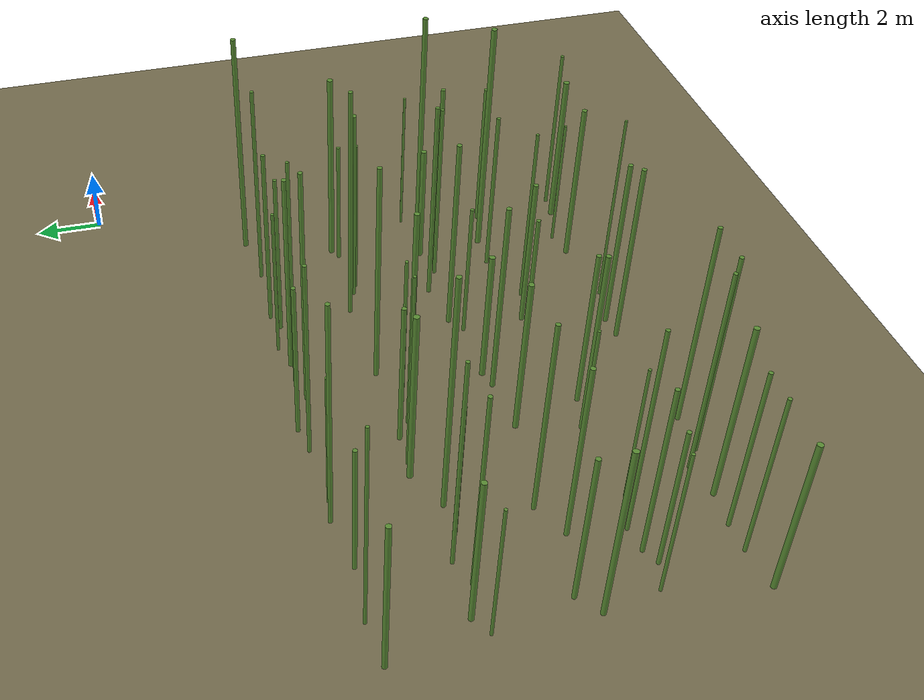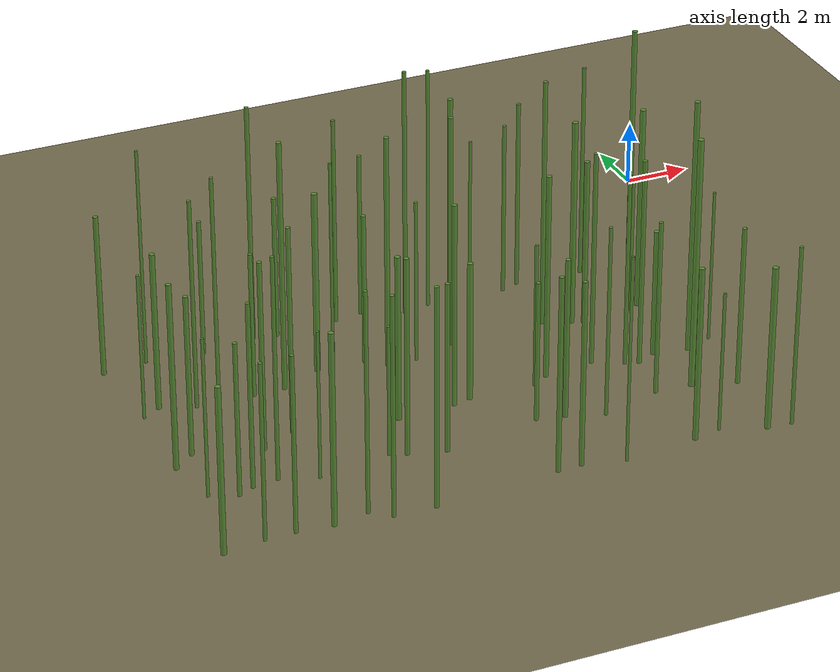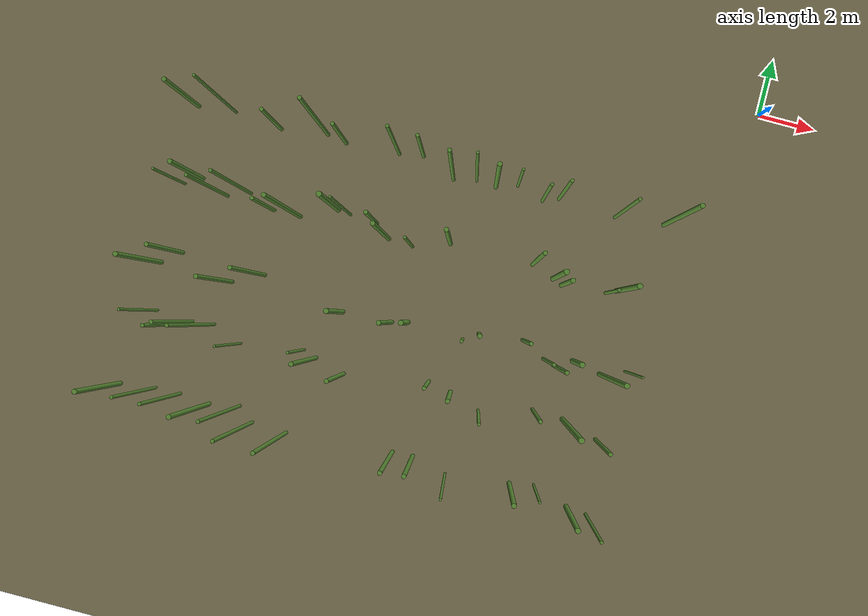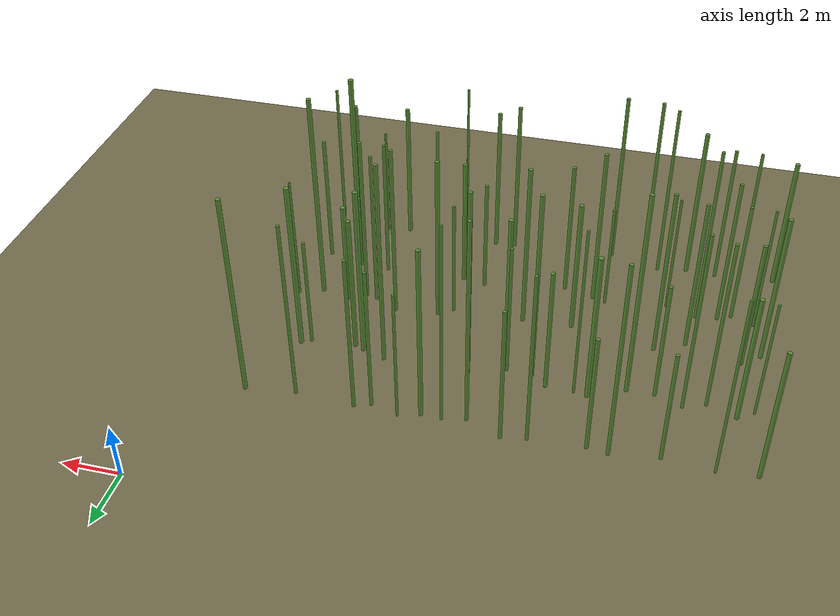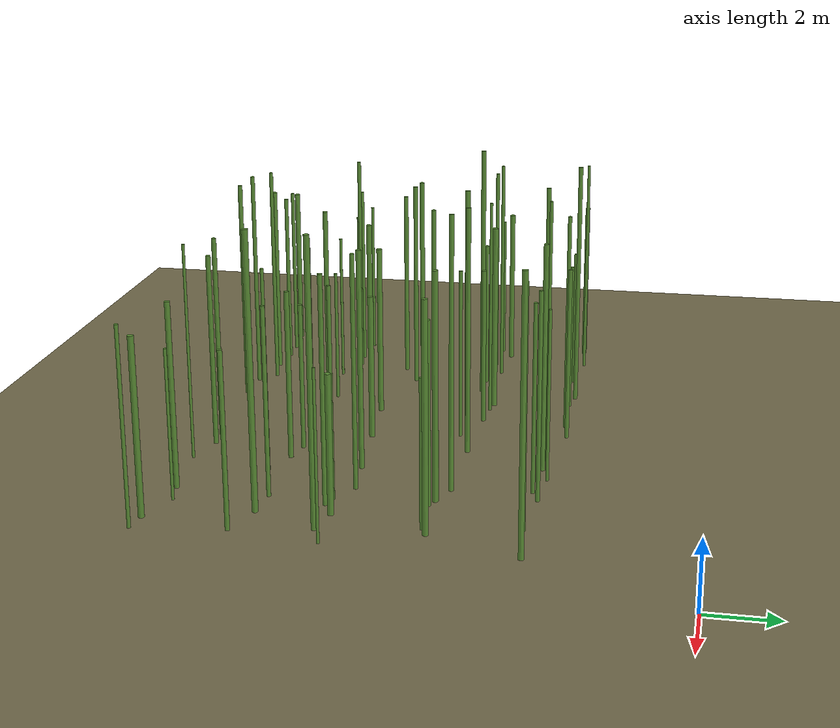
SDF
<sdf version="1.9">
 <world name="bamboo_field">
  <model name="ground_plane">
   <static>true</static>
   <link name="link">
    <collision name="collision">
     <geometry><plane><normal>0 0 1</normal><size>80.0 80.0</size></plane></geometry>
    </collision>
    <visual name="visual">
     <geometry><plane><normal>0 0 1</normal><size>80.0 80.0</size></plane></geometry>
     <material><diffuse>0.45 0.42 0.30 1</diffuse></material>
    </visual>
   </link>
  </model>
  <model name="bamboo_622">
   <static>true</static>
   <pose>-19.19589700022642 -14.782500453258823 2.566533336017912 0 0 0</pose>
   <link name="link">
    <collision name="collision">
     <geometry>
      <cylinder><radius>0.08295266236507057</radius><length>5.133066672035824</length></cylinder>
     </geometry>
    </collision>
    <visual name="visual">
     <geometry>
      <cylinder><radius>0.08295266236507057</radius><length>5.133066672035824</length></cylinder>
     </geometry>
     <material><diffuse>0.35 0.55 0.20 1</diffuse><specular>0.1 0.1 0.1 1</specular></material>
    </visual>
   </link>
  </model>
  <model name="bamboo_624">
   <static>true</static>
   <pose>-17.963861559259982 -14.612449992195321 2.7245395795491816 0 0 0</pose>
   <link name="link">
    <collision name="collision">
     <geometry>
      <cylinder><radius>0.05579508573146353</radius><length>5.449079159098363</length></cylinder>
     </geometry>
    </collision>
    <visual name="visual">
     <geometry>
      <cylinder><radius>0.05579508573146353</radius><length>5.449079159098363</length></cylinder>
     </geometry>
     <material><diffuse>0.35 0.55 0.20 1</diffuse><specular>0.1 0.1 0.1 1</specular></material>
    </visual>
   </link>
  </model>
  <model name="bamboo_625">
   <static>true</static>
   <pose>-17.077861095144467 -14.59212915299546 2.7312881888729432 0 0 0</pose>
   <link name="link">
    <collision name="collision">
     <geometry>
      <cylinder><radius>0.06117807737166815</radius><length>5.4625763777458864</length></cylinder>
     </geometry>
    </collision>
    <visual name="visual">
     <geometry>
      <cylinder><radius>0.06117807737166815</radius><length>5.4625763777458864</length></cylinder>
     </geometry>
     <material><diffuse>0.35 0.55 0.20 1</diffuse><specular>0.1 0.1 0.1 1</specular></material>
    </visual>
   </link>
  </model>
  <model name="bamboo_626">
   <static>true</static>
   <pose>-16.009615636701124 -14.680115197131043 2.964935514013761 0 0 0</pose>
   <link name="link">
    <collision name="collision">
     <geometry>
      <cylinder><radius>0.07918942084817687</radius><length>5.929871028027522</length></cylinder>
     </geometry>
    </collision>
    <visual name="visual">
     <geometry>
      <cylinder><radius>0.07918942084817687</radius><length>5.929871028027522</length></cylinder>
     </geometry>
     <material><diffuse>0.35 0.55 0.20 1</diffuse><specular>0.1 0.1 0.1 1</specular></material>
    </visual>
   </link>
  </model>
  <model name="bamboo_627">
   <static>true</static>
   <pose>-14.95220595531622 -14.470053900563355 3.4109892159421706 0 0 0</pose>
   <link name="link">
    <collision name="collision">
     <geometry>
      <cylinder><radius>0.05721781521074268</radius><length>6.821978431884341</length></cylinder>
     </geometry>
    </collision>
    <visual name="visual">
     <geometry>
      <cylinder><radius>0.05721781521074268</radius><length>6.821978431884341</length></cylinder>
     </geometry>
     <material><diffuse>0.35 0.55 0.20 1</diffuse><specular>0.1 0.1 0.1 1</specular></material>
    </visual>
   </link>
  </model>
  <model name="bamboo_628">
   <static>true</static>
   <pose>-14.390283934693272 -14.918432447463218 3.3986228845901065 0 0 0</pose>
   <link name="link">
    <collision name="collision">
     <geometry>
      <cylinder><radius>0.06232974387076096</radius><length>6.797245769180213</length></cylinder>
     </geometry>
    </collision>
    <visual name="visual">
     <geometry>
      <cylinder><radius>0.06232974387076096</radius><length>6.797245769180213</length></cylinder>
     </geometry>
     <material><diffuse>0.35 0.55 0.20 1</diffuse><specular>0.1 0.1 0.1 1</specular></material>
    </visual>
   </link>
  </model>
  <model name="bamboo_629">
   <static>true</static>
   <pose>-13.148563201045668 -14.956036540146622 3.3941148174489206 0 0 0</pose>
   <link name="link">
    <collision name="collision">
     <geometry>
      <cylinder><radius>0.0675288107298409</radius><length>6.788229634897841</length></cylinder>
     </geometry>
    </collision>
    <visual name="visual">
     <geometry>
      <cylinder><radius>0.0675288107298409</radius><length>6.788229634897841</length></cylinder>
     </geometry>
     <material><diffuse>0.35 0.55 0.20 1</diffuse><specular>0.1 0.1 0.1 1</specular></material>
    </visual>
   </link>
  </model>
  <model name="bamboo_631">
   <static>true</static>
   <pose>-9.398853418787553 -14.650322351870006 3.042011086441118 0 0 0</pose>
   <link name="link">
    <collision name="collision">
     <geometry>
      <cylinder><radius>0.07069827953583568</radius><length>6.084022172882236</length></cylinder>
     </geometry>
    </collision>
    <visual name="visual">
     <geometry>
      <cylinder><radius>0.07069827953583568</radius><length>6.084022172882236</length></cylinder>
     </geometry>
     <material><diffuse>0.35 0.55 0.20 1</diffuse><specular>0.1 0.1 0.1 1</specular></material>
    </visual>
   </link>
  </model>
  <model name="bamboo_632">
   <static>true</static>
   <pose>-8.677496087881385 -14.608734190645084 2.8779440970824717 0 0 0</pose>
   <link name="link">
    <collision name="collision">
     <geometry>
      <cylinder><radius>0.07201456572650686</radius><length>5.755888194164943</length></cylinder>
     </geometry>
    </collision>
    <visual name="visual">
     <geometry>
      <cylinder><radius>0.07201456572650686</radius><length>5.755888194164943</length></cylinder>
     </geometry>
     <material><diffuse>0.35 0.55 0.20 1</diffuse><specular>0.1 0.1 0.1 1</specular></material>
    </visual>
   </link>
  </model>
  <model name="bamboo_633">
   <static>true</static>
   <pose>-7.436057652112463 -14.906383465567231 3.199029825784979 0 0 0</pose>
   <link name="link">
    <collision name="collision">
     <geometry>
      <cylinder><radius>0.041680467569812925</radius><length>6.398059651569958</length></cylinder>
     </geometry>
    </collision>
    <visual name="visual">
     <geometry>
      <cylinder><radius>0.041680467569812925</radius><length>6.398059651569958</length></cylinder>
     </geometry>
     <material><diffuse>0.35 0.55 0.20 1</diffuse><specular>0.1 0.1 0.1 1</specular></material>
    </visual>
   </link>
  </model>
  <model name="bamboo_634">
   <static>true</static>
   <pose>-5.194053301083249 -14.658297030893085 2.7062553267130562 0 0 0</pose>
   <link name="link">
    <collision name="collision">
     <geometry>
      <cylinder><radius>0.07898364394882086</radius><length>5.4125106534261125</length></cylinder>
     </geometry>
    </collision>
    <visual name="visual">
     <geometry>
      <cylinder><radius>0.07898364394882086</radius><length>5.4125106534261125</length></cylinder>
     </geometry>
     <material><diffuse>0.35 0.55 0.20 1</diffuse><specular>0.1 0.1 0.1 1</specular></material>
    </visual>
   </link>
  </model>
  <model name="bamboo_635">
   <static>true</static>
   <pose>-4.3644107516979105 -14.487717784825364 2.180331715190301 0 0 0</pose>
   <link name="link">
    <collision name="collision">
     <geometry>
      <cylinder><radius>0.04343085859685295</radius><length>4.360663430380602</length></cylinder>
     </geometry>
    </collision>
    <visual name="visual">
     <geometry>
      <cylinder><radius>0.04343085859685295</radius><length>4.360663430380602</length></cylinder>
     </geometry>
     <material><diffuse>0.35 0.55 0.20 1</diffuse><specular>0.1 0.1 0.1 1</specular></material>
    </visual>
   </link>
  </model>
  <model name="bamboo_636">
   <static>true</static>
   <pose>-3.073098427449538 -14.932385511379701 2.5530156973942444 0 0 0</pose>
   <link name="link">
    <collision name="collision">
     <geometry>
      <cylinder><radius>0.08816438325327444</radius><length>5.106031394788489</length></cylinder>
     </geometry>
    </collision>
    <visual name="visual">
     <geometry>
      <cylinder><radius>0.08816438325327444</radius><length>5.106031394788489</length></cylinder>
     </geometry>
     <material><diffuse>0.35 0.55 0.20 1</diffuse><specular>0.1 0.1 0.1 1</specular></material>
    </visual>
   </link>
  </model>
  <model name="bamboo_637">
   <static>true</static>
   <pose>-2.3511418072444625 -15.01788296717118 2.8142692522144035 0 0 0</pose>
   <link name="link">
    <collision name="collision">
     <geometry>
      <cylinder><radius>0.05305537528359695</radius><length>5.628538504428807</length></cylinder>
     </geometry>
    </collision>
    <visual name="visual">
     <geometry>
      <cylinder><radius>0.05305537528359695</radius><length>5.628538504428807</length></cylinder>
     </geometry>
     <material><diffuse>0.35 0.55 0.20 1</diffuse><specular>0.1 0.1 0.1 1</specular></material>
    </visual>
   </link>
  </model>
  <model name="bamboo_690">
   <static>true</static>
   <pose>-18.60156482868109 -11.990997208842836 2.4653492617121273 0 0 0</pose>
   <link name="link">
    <collision name="collision">
     <geometry>
      <cylinder><radius>0.04629137288326132</radius><length>4.930698523424255</length></cylinder>
     </geometry>
    </collision>
    <visual name="visual">
     <geometry>
      <cylinder><radius>0.04629137288326132</radius><length>4.930698523424255</length></cylinder>
     </geometry>
     <material><diffuse>0.35 0.55 0.20 1</diffuse><specular>0.1 0.1 0.1 1</specular></material>
    </visual>
   </link>
  </model>
  <model name="bamboo_691">
   <static>true</static>
   <pose>-17.80358383087639 -12.292273238818344 2.385930598100317 0 0 0</pose>
   <link name="link">
    <collision name="collision">
     <geometry>
      <cylinder><radius>0.06193594490482987</radius><length>4.771861196200634</length></cylinder>
     </geometry>
    </collision>
    <visual name="visual">
     <geometry>
      <cylinder><radius>0.06193594490482987</radius><length>4.771861196200634</length></cylinder>
     </geometry>
     <material><diffuse>0.35 0.55 0.20 1</diffuse><specular>0.1 0.1 0.1 1</specular></material>
    </visual>
   </link>
  </model>
  <model name="bamboo_692">
   <static>true</static>
   <pose>-17.325865730062212 -12.055064044396689 2.8750000083301184 0 0 0</pose>
   <link name="link">
    <collision name="collision">
     <geometry>
      <cylinder><radius>0.06426510665812565</radius><length>5.750000016660237</length></cylinder>
     </geometry>
    </collision>
    <visual name="visual">
     <geometry>
      <cylinder><radius>0.06426510665812565</radius><length>5.750000016660237</length></cylinder>
     </geometry>
     <material><diffuse>0.35 0.55 0.20 1</diffuse><specular>0.1 0.1 0.1 1</specular></material>
    </visual>
   </link>
  </model>
  <model name="bamboo_693">
   <static>true</static>
   <pose>-16.563528489082167 -11.961045771519863 3.4648048202454254 0 0 0</pose>
   <link name="link">
    <collision name="collision">
     <geometry>
      <cylinder><radius>0.05738323395091327</radius><length>6.929609640490851</length></cylinder>
     </geometry>
    </collision>
    <visual name="visual">
     <geometry>
      <cylinder><radius>0.05738323395091327</radius><length>6.929609640490851</length></cylinder>
     </geometry>
     <material><diffuse>0.35 0.55 0.20 1</diffuse><specular>0.1 0.1 0.1 1</specular></material>
    </visual>
   </link>
  </model>
  <model name="bamboo_694">
   <static>true</static>
   <pose>-15.483495149444247 -12.358645998666844 2.310050956150654 0 0 0</pose>
   <link name="link">
    <collision name="collision">
     <geometry>
      <cylinder><radius>0.043443829168057974</radius><length>4.620101912301308</length></cylinder>
     </geometry>
    </collision>
    <visual name="visual">
     <geometry>
      <cylinder><radius>0.043443829168057974</radius><length>4.620101912301308</length></cylinder>
     </geometry>
     <material><diffuse>0.35 0.55 0.20 1</diffuse><specular>0.1 0.1 0.1 1</specular></material>
    </visual>
   </link>
  </model>
  <model name="bamboo_695">
   <static>true</static>
   <pose>-13.288630002678582 -11.99977888943509 2.03743971317611 0 0 0</pose>
   <link name="link">
    <collision name="collision">
     <geometry>
      <cylinder><radius>0.049276714504857495</radius><length>4.07487942635222</length></cylinder>
     </geometry>
    </collision>
    <visual name="visual">
     <geometry>
      <cylinder><radius>0.049276714504857495</radius><length>4.07487942635222</length></cylinder>
     </geometry>
     <material><diffuse>0.35 0.55 0.20 1</diffuse><specular>0.1 0.1 0.1 1</specular></material>
    </visual>
   </link>
  </model>
  <model name="bamboo_696">
   <static>true</static>
   <pose>-12.821652293099609 -12.17614164872633 3.0779130431868094 0 0 0</pose>
   <link name="link">
    <collision name="collision">
     <geometry><cylinder><radius>0.072914470868991</radius><length>6.155826086373619</length></cylinder></geometry>
    </collision>
    <visual name="visual">
     <geometry><cylinder><radius>0.072914470868991</radius><length>6.155826086373619</length></cylinder></geometry>
     <material><diffuse>0.35 0.55 0.20 1</diffuse><specular>0.1 0.1 0.1 1</specular></material>
    </visual>
   </link>
  </model>
  <model name="bamboo_697">
   <static>true</static>
   <pose>-11.745243466548754 -12.465665593066063 2.645200079825588 0 0 0</pose>
   <link name="link">
    <collision name="collision">
     <geometry>
      <cylinder><radius>0.07065196211752633</radius><length>5.290400159651176</length></cylinder>
     </geometry>
    </collision>
    <visual name="visual">
     <geometry>
      <cylinder><radius>0.07065196211752633</radius><length>5.290400159651176</length></cylinder>
     </geometry>
     <material><diffuse>0.35 0.55 0.20 1</diffuse><specular>0.1 0.1 0.1 1</specular></material>
    </visual>
   </link>
  </model>
  <model name="bamboo_698">
   <static>true</static>
   <pose>-8.801413020581176 -11.957580818269104 2.1975071732970646 0 0 0</pose>
   <link name="link">
    <collision name="collision">
     <geometry>
      <cylinder><radius>0.06426851436183476</radius><length>4.395014346594129</length></cylinder>
     </geometry>
    </collision>
    <visual name="visual">
     <geometry>
      <cylinder><radius>0.06426851436183476</radius><length>4.395014346594129</length></cylinder>
     </geometry>
     <material><diffuse>0.35 0.55 0.20 1</diffuse><specular>0.1 0.1 0.1 1</specular></material>
    </visual>
   </link>
  </model>
  <model name="bamboo_699">
   <static>true</static>
   <pose>-7.981505230149471 -12.118822949930932 2.511877060667956 0 0 0</pose>
   <link name="link">
    <collision name="collision">
     <geometry>
      <cylinder><radius>0.07506570107873563</radius><length>5.023754121335912</length></cylinder>
     </geometry>
    </collision>
    <visual name="visual">
     <geometry>
      <cylinder><radius>0.07506570107873563</radius><length>5.023754121335912</length></cylinder>
     </geometry>
     <material><diffuse>0.35 0.55 0.20 1</diffuse><specular>0.1 0.1 0.1 1</specular></material>
    </visual>
   </link>
  </model>
  <model name="bamboo_700">
   <static>true</static>
   <pose>-6.886766332221003 -12.487020724630638 2.982811002856548 0 0 0</pose>
   <link name="link">
    <collision name="collision">
     <geometry>
      <cylinder><radius>0.05043690467467507</radius><length>5.965622005713096</length></cylinder>
     </geometry>
    </collision>
    <visual name="visual">
     <geometry>
      <cylinder><radius>0.05043690467467507</radius><length>5.965622005713096</length></cylinder>
     </geometry>
     <material><diffuse>0.35 0.55 0.20 1</diffuse><specular>0.1 0.1 0.1 1</specular></material>
    </visual>
   </link>
  </model>
  <model name="bamboo_701">
   <static>true</static>
   <pose>-5.070083874957882 -11.966440410499466 2.738137301716947 0 0 0</pose>
   <link name="link">
    <collision name="collision">
     <geometry>
      <cylinder><radius>0.06079766013548765</radius><length>5.476274603433894</length></cylinder>
     </geometry>
    </collision>
    <visual name="visual">
     <geometry>
      <cylinder><radius>0.06079766013548765</radius><length>5.476274603433894</length></cylinder>
     </geometry>
     <material><diffuse>0.35 0.55 0.20 1</diffuse><specular>0.1 0.1 0.1 1</specular></material>
    </visual>
   </link>
  </model>
  <model name="bamboo_702">
   <static>true</static>
   <pose>-3.9635225436899404 -12.035370133927215 3.9211734908742497 0 0 0</pose>
   <link name="link">
    <collision name="collision">
     <geometry>
      <cylinder><radius>0.08723017410036178</radius><length>7.842346981748499</length></cylinder>
     </geometry>
    </collision>
    <visual name="visual">
     <geometry>
      <cylinder><radius>0.08723017410036178</radius><length>7.842346981748499</length></cylinder>
     </geometry>
     <material><diffuse>0.35 0.55 0.20 1</diffuse><specular>0.1 0.1 0.1 1</specular></material>
    </visual>
   </link>
  </model>
  <model name="bamboo_703">
   <static>true</static>
   <pose>-2.681114060761909 -12.417761962753405 2.4975260581080265 0 0 0</pose>
   <link name="link">
    <collision name="collision">
     <geometry>
      <cylinder><radius>0.06630960108968485</radius><length>4.995052116216053</length></cylinder>
     </geometry>
    </collision>
    <visual name="visual">
     <geometry>
      <cylinder><radius>0.06630960108968485</radius><length>4.995052116216053</length></cylinder>
     </geometry>
     <material><diffuse>0.35 0.55 0.20 1</diffuse><specular>0.1 0.1 0.1 1</specular></material>
    </visual>
   </link>
  </model>
  <model name="bamboo_762">
   <static>true</static>
   <pose>-18.914619425701634 -10.334502647534554 2.892516468298145 0 0 0</pose>
   <link name="link">
    <collision name="collision">
     <geometry>
      <cylinder><radius>0.07843152111804713</radius><length>5.78503293659629</length></cylinder>
     </geometry>
    </collision>
    <visual name="visual">
     <geometry>
      <cylinder><radius>0.07843152111804713</radius><length>5.78503293659629</length></cylinder>
     </geometry>
     <material><diffuse>0.35 0.55 0.20 1</diffuse><specular>0.1 0.1 0.1 1</specular></material>
    </visual>
   </link>
  </model>
  <model name="bamboo_763">
   <static>true</static>
   <pose>-18.279458147259895 -9.818002692922969 2.5062219502360783 0 0 0</pose>
   <link name="link">
    <collision name="collision">
     <geometry>
      <cylinder><radius>0.07112801639936708</radius><length>5.012443900472157</length></cylinder>
     </geometry>
    </collision>
    <visual name="visual">
     <geometry>
      <cylinder><radius>0.07112801639936708</radius><length>5.012443900472157</length></cylinder>
     </geometry>
     <material><diffuse>0.35 0.55 0.20 1</diffuse><specular>0.1 0.1 0.1 1</specular></material>
    </visual>
   </link>
  </model>
  <model name="bamboo_764">
   <static>true</static>
   <pose>-16.342920419685324 -10.361206990258399 2.9514239796063078 0 0 0</pose>
   <link name="link">
    <collision name="collision">
     <geometry>
      <cylinder><radius>0.06944311635921546</radius><length>5.9028479592126155</length></cylinder>
     </geometry>
    </collision>
    <visual name="visual">
     <geometry>
      <cylinder><radius>0.06944311635921546</radius><length>5.9028479592126155</length></cylinder>
     </geometry>
     <material><diffuse>0.35 0.55 0.20 1</diffuse><specular>0.1 0.1 0.1 1</specular></material>
    </visual>
   </link>
  </model>
  <model name="bamboo_765">
   <static>true</static>
   <pose>-15.299701480176816 -9.839113679123713 3.2395320777391703 0 0 0</pose>
   <link name="link">
    <collision name="collision">
     <geometry>
      <cylinder><radius>0.06736708047915732</radius><length>6.479064155478341</length></cylinder>
     </geometry>
    </collision>
    <visual name="visual">
     <geometry>
      <cylinder><radius>0.06736708047915732</radius><length>6.479064155478341</length></cylinder>
     </geometry>
     <material><diffuse>0.35 0.55 0.20 1</diffuse><specular>0.1 0.1 0.1 1</specular></material>
    </visual>
   </link>
  </model>
  <model name="bamboo_766">
   <static>true</static>
   <pose>-12.323306259019269 -10.38246847849213 2.5968830932842355 0 0 0</pose>
   <link name="link">
    <collision name="collision">
     <geometry>
      <cylinder><radius>0.0819007217896303</radius><length>5.193766186568471</length></cylinder>
     </geometry>
    </collision>
    <visual name="visual">
     <geometry>
      <cylinder><radius>0.0819007217896303</radius><length>5.193766186568471</length></cylinder>
     </geometry>
     <material><diffuse>0.35 0.55 0.20 1</diffuse><specular>0.1 0.1 0.1 1</specular></material>
    </visual>
   </link>
  </model>
  <model name="bamboo_767">
   <static>true</static>
   <pose>-10.58084127448773 -10.292596945275715 3.1899379726094392 0 0 0</pose>
   <link name="link">
    <collision name="collision">
     <geometry>
      <cylinder><radius>0.07457568090403333</radius><length>6.3798759452188785</length></cylinder>
     </geometry>
    </collision>
    <visual name="visual">
     <geometry>
      <cylinder><radius>0.07457568090403333</radius><length>6.3798759452188785</length></cylinder>
     </geometry>
     <material><diffuse>0.35 0.55 0.20 1</diffuse><specular>0.1 0.1 0.1 1</specular></material>
    </visual>
   </link>
  </model>
  <model name="bamboo_768">
   <static>true</static>
   <pose>-10.040315311835574 -10.158791834583738 2.186252575643539 0 0 0</pose>
   <link name="link">
    <collision name="collision">
     <geometry>
      <cylinder><radius>0.08657399096930028</radius><length>4.372505151287078</length></cylinder>
     </geometry>
    </collision>
    <visual name="visual">
     <geometry>
      <cylinder><radius>0.08657399096930028</radius><length>4.372505151287078</length></cylinder>
     </geometry>
     <material><diffuse>0.35 0.55 0.20 1</diffuse><specular>0.1 0.1 0.1 1</specular></material>
    </visual>
   </link>
  </model>
  <model name="bamboo_769">
   <static>true</static>
   <pose>-8.04108256561415 -10.224697452490076 2.269091578156102 0 0 0</pose>
   <link name="link">
    <collision name="collision">
     <geometry>
      <cylinder><radius>0.054641635667836974</radius><length>4.538183156312204</length></cylinder>
     </geometry>
    </collision>
    <visual name="visual">
     <geometry>
      <cylinder><radius>0.054641635667836974</radius><length>4.538183156312204</length></cylinder>
     </geometry>
     <material><diffuse>0.35 0.55 0.20 1</diffuse><specular>0.1 0.1 0.1 1</specular></material>
    </visual>
   </link>
  </model>
  <model name="bamboo_770">
   <static>true</static>
   <pose>-7.539983515093234 -9.905980468582415 3.2241074898568476 0 0 0</pose>
   <link name="link">
    <collision name="collision">
     <geometry>
      <cylinder><radius>0.07479147486725858</radius><length>6.448214979713695</length></cylinder>
     </geometry>
    </collision>
    <visual name="visual">
     <geometry>
      <cylinder><radius>0.07479147486725858</radius><length>6.448214979713695</length></cylinder>
     </geometry>
     <material><diffuse>0.35 0.55 0.20 1</diffuse><specular>0.1 0.1 0.1 1</specular></material>
    </visual>
   </link>
  </model>
  <model name="bamboo_771">
   <static>true</static>
   <pose>-6.011179467215512 -9.726395522775412 3.37730855650869 0 0 0</pose>
   <link name="link">
    <collision name="collision">
     <geometry>
      <cylinder><radius>0.06418314916047235</radius><length>6.75461711301738</length></cylinder>
     </geometry>
    </collision>
    <visual name="visual">
     <geometry>
      <cylinder><radius>0.06418314916047235</radius><length>6.75461711301738</length></cylinder>
     </geometry>
     <material><diffuse>0.35 0.55 0.20 1</diffuse><specular>0.1 0.1 0.1 1</specular></material>
    </visual>
   </link>
  </model>
  <model name="bamboo_772">
   <static>true</static>
   <pose>-5.1535116831552505 -10.169093091354357 3.0507824506631893 0 0 0</pose>
   <link name="link">
    <collision name="collision">
     <geometry>
      <cylinder><radius>0.05582442792492361</radius><length>6.101564901326379</length></cylinder>
     </geometry>
    </collision>
    <visual name="visual">
     <geometry>
      <cylinder><radius>0.05582442792492361</radius><length>6.101564901326379</length></cylinder>
     </geometry>
     <material><diffuse>0.35 0.55 0.20 1</diffuse><specular>0.1 0.1 0.1 1</specular></material>
    </visual>
   </link>
  </model>
  <model name="bamboo_773">
   <static>true</static>
   <pose>-4.753390345420854 -10.290855370256956 3.263715214993672 0 0 0</pose>
   <link name="link">
    <collision name="collision">
     <geometry>
      <cylinder><radius>0.06598529000922468</radius><length>6.527430429987344</length></cylinder>
     </geometry>
    </collision>
    <visual name="visual">
     <geometry>
      <cylinder><radius>0.06598529000922468</radius><length>6.527430429987344</length></cylinder>
     </geometry>
     <material><diffuse>0.35 0.55 0.20 1</diffuse><specular>0.1 0.1 0.1 1</specular></material>
    </visual>
   </link>
  </model>
  <model name="bamboo_774">
   <static>true</static>
   <pose>-4.137590401668846 -9.978967912743533 2.0031618344516624 0 0 0</pose>
   <link name="link">
    <collision name="collision">
     <geometry>
      <cylinder><radius>0.08896288297830351</radius><length>4.006323668903325</length></cylinder>
     </geometry>
    </collision>
    <visual name="visual">
     <geometry>
      <cylinder><radius>0.08896288297830351</radius><length>4.006323668903325</length></cylinder>
     </geometry>
     <material><diffuse>0.35 0.55 0.20 1</diffuse><specular>0.1 0.1 0.1 1</specular></material>
    </visual>
   </link>
  </model>
  <model name="bamboo_775">
   <static>true</static>
   <pose>-3.1173820726960004 -10.183135852562614 3.9979740145002616 0 0 0</pose>
   <link name="link">
    <collision name="collision">
     <geometry>
      <cylinder><radius>0.07997821756277532</radius><length>7.995948029000523</length></cylinder>
     </geometry>
    </collision>
    <visual name="visual">
     <geometry>
      <cylinder><radius>0.07997821756277532</radius><length>7.995948029000523</length></cylinder>
     </geometry>
     <material><diffuse>0.35 0.55 0.20 1</diffuse><specular>0.1 0.1 0.1 1</specular></material>
    </visual>
   </link>
  </model>
  <model name="bamboo_776">
   <static>true</static>
   <pose>-2.285905976120553 -9.863653580423943 2.40237427786018 0 0 0</pose>
   <link name="link">
    <collision name="collision">
     <geometry>
      <cylinder><radius>0.04056486339890149</radius><length>4.80474855572036</length></cylinder>
     </geometry>
    </collision>
    <visual name="visual">
     <geometry>
      <cylinder><radius>0.04056486339890149</radius><length>4.80474855572036</length></cylinder>
     </geometry>
     <material><diffuse>0.35 0.55 0.20 1</diffuse><specular>0.1 0.1 0.1 1</specular></material>
    </visual>
   </link>
  </model>
  <model name="bamboo_831">
   <static>true</static>
   <pose>-18.832070231817585 -7.466847267730239 2.290140503578545 0 0 0</pose>
   <link name="link">
    <collision name="collision">
     <geometry>
      <cylinder><radius>0.044220073285455117</radius><length>4.58028100715709</length></cylinder>
     </geometry>
    </collision>
    <visual name="visual">
     <geometry>
      <cylinder><radius>0.044220073285455117</radius><length>4.58028100715709</length></cylinder>
     </geometry>
     <material><diffuse>0.35 0.55 0.20 1</diffuse><specular>0.1 0.1 0.1 1</specular></material>
    </visual>
   </link>
  </model>
  <model name="bamboo_832">
   <static>true</static>
   <pose>-18.279320714003536 -7.128450210146547 2.475894878218581 0 0 0</pose>
   <link name="link">
    <collision name="collision">
     <geometry>
      <cylinder><radius>0.07851838945715389</radius><length>4.951789756437162</length></cylinder>
     </geometry>
    </collision>
    <visual name="visual">
     <geometry>
      <cylinder><radius>0.07851838945715389</radius><length>4.951789756437162</length></cylinder>
     </geometry>
     <material><diffuse>0.35 0.55 0.20 1</diffuse><specular>0.1 0.1 0.1 1</specular></material>
    </visual>
   </link>
  </model>
  <model name="bamboo_833">
   <static>true</static>
   <pose>-17.27426876887915 -7.4935564216026975 3.28452219462984 0 0 0</pose>
   <link name="link">
    <collision name="collision">
     <geometry>
      <cylinder><radius>0.05725378597316361</radius><length>6.56904438925968</length></cylinder>
     </geometry>
    </collision>
    <visual name="visual">
     <geometry>
      <cylinder><radius>0.05725378597316361</radius><length>6.56904438925968</length></cylinder>
     </geometry>
     <material><diffuse>0.35 0.55 0.20 1</diffuse><specular>0.1 0.1 0.1 1</specular></material>
    </visual>
   </link>
  </model>
  <model name="bamboo_834">
   <static>true</static>
   <pose>-16.509367865045824 -7.201987894032356 3.492301090780672 0 0 0</pose>
   <link name="link">
    <collision name="collision">
     <geometry>
      <cylinder><radius>0.055068356497684955</radius><length>6.984602181561344</length></cylinder>
     </geometry>
    </collision>
    <visual name="visual">
     <geometry>
      <cylinder><radius>0.055068356497684955</radius><length>6.984602181561344</length></cylinder>
     </geometry>
     <material><diffuse>0.35 0.55 0.20 1</diffuse><specular>0.1 0.1 0.1 1</specular></material>
    </visual>
   </link>
  </model>
  <model name="bamboo_835">
   <static>true</static>
   <pose>-15.574952629437036 -7.566448348626016 2.2902996619111615 0 0 0</pose>
   <link name="link">
    <collision name="collision">
     <geometry>
      <cylinder><radius>0.06372947903820318</radius><length>4.580599323822323</length></cylinder>
     </geometry>
    </collision>
    <visual name="visual">
     <geometry>
      <cylinder><radius>0.06372947903820318</radius><length>4.580599323822323</length></cylinder>
     </geometry>
     <material><diffuse>0.35 0.55 0.20 1</diffuse><specular>0.1 0.1 0.1 1</specular></material>
    </visual>
   </link>
  </model>
  <model name="bamboo_836">
   <static>true</static>
   <pose>-14.635244616470827 -7.546040146171565 3.923525445614061 0 0 0</pose>
   <link name="link">
    <collision name="collision">
     <geometry>
      <cylinder><radius>0.07392467026251875</radius><length>7.847050891228122</length></cylinder>
     </geometry>
    </collision>
    <visual name="visual">
     <geometry>
      <cylinder><radius>0.07392467026251875</radius><length>7.847050891228122</length></cylinder>
     </geometry>
     <material><diffuse>0.35 0.55 0.20 1</diffuse><specular>0.1 0.1 0.1 1</specular></material>
    </visual>
   </link>
  </model>
  <model name="bamboo_837">
   <static>true</static>
   <pose>-13.403543766193776 -6.973903505454041 2.8635717572344177 0 0 0</pose>
   <link name="link">
    <collision name="collision">
     <geometry>
      <cylinder><radius>0.08780918279448124</radius><length>5.727143514468835</length></cylinder>
     </geometry>
    </collision>
    <visual name="visual">
     <geometry>
      <cylinder><radius>0.08780918279448124</radius><length>5.727143514468835</length></cylinder>
     </geometry>
     <material><diffuse>0.35 0.55 0.20 1</diffuse><specular>0.1 0.1 0.1 1</specular></material>
    </visual>
   </link>
  </model>
  <model name="bamboo_838">
   <static>true</static>
   <pose>-12.938378580455716 -7.033546765978535 3.3086865631368285 0 0 0</pose>
   <link name="link">
    <collision name="collision">
     <geometry>
      <cylinder><radius>0.04491383942043182</radius><length>6.617373126273657</length></cylinder>
     </geometry>
    </collision>
    <visual name="visual">
     <geometry>
      <cylinder><radius>0.04491383942043182</radius><length>6.617373126273657</length></cylinder>
     </geometry>
     <material><diffuse>0.35 0.55 0.20 1</diffuse><specular>0.1 0.1 0.1 1</specular></material>
    </visual>
   </link>
  </model>
  <model name="bamboo_839">
   <static>true</static>
   <pose>-11.976365228178247 -7.0915576464596395 2.389851369261031 0 0 0</pose>
   <link name="link">
    <collision name="collision">
     <geometry>
      <cylinder><radius>0.06943621455524016</radius><length>4.779702738522062</length></cylinder>
     </geometry>
    </collision>
    <visual name="visual">
     <geometry>
      <cylinder><radius>0.06943621455524016</radius><length>4.779702738522062</length></cylinder>
     </geometry>
     <material><diffuse>0.35 0.55 0.20 1</diffuse><specular>0.1 0.1 0.1 1</specular></material>
    </visual>
   </link>
  </model>
  <model name="bamboo_840">
   <static>true</static>
   <pose>-11.432210201662084 -7.506363345059793 3.6633789996497623 0 0 0</pose>
   <link name="link">
    <collision name="collision">
     <geometry>
      <cylinder><radius>0.0736400929869995</radius><length>7.326757999299525</length></cylinder>
     </geometry>
    </collision>
    <visual name="visual">
     <geometry>
      <cylinder><radius>0.0736400929869995</radius><length>7.326757999299525</length></cylinder>
     </geometry>
     <material><diffuse>0.35 0.55 0.20 1</diffuse><specular>0.1 0.1 0.1 1</specular></material>
    </visual>
   </link>
  </model>
  <model name="bamboo_841">
   <static>true</static>
   <pose>-10.563864603455006 -7.558162145692947 2.566594038186909 0 0 0</pose>
   <link name="link">
    <collision name="collision">
     <geometry>
      <cylinder><radius>0.05097081628637412</radius><length>5.133188076373818</length></cylinder>
     </geometry>
    </collision>
    <visual name="visual">
     <geometry>
      <cylinder><radius>0.05097081628637412</radius><length>5.133188076373818</length></cylinder>
     </geometry>
     <material><diffuse>0.35 0.55 0.20 1</diffuse><specular>0.1 0.1 0.1 1</specular></material>
    </visual>
   </link>
  </model>
  <model name="bamboo_842">
   <static>true</static>
   <pose>-9.296901490962945 -7.128094457081239 3.670918274176489 0 0 0</pose>
   <link name="link">
    <collision name="collision">
     <geometry>
      <cylinder><radius>0.07283027592821678</radius><length>7.341836548352978</length></cylinder>
     </geometry>
    </collision>
    <visual name="visual">
     <geometry>
      <cylinder><radius>0.07283027592821678</radius><length>7.341836548352978</length></cylinder>
     </geometry>
     <material><diffuse>0.35 0.55 0.20 1</diffuse><specular>0.1 0.1 0.1 1</specular></material>
    </visual>
   </link>
  </model>
  <model name="bamboo_843">
   <static>true</static>
   <pose>-6.346678397568326 -7.087794933133619 3.934331017505655 0 0 0</pose>
   <link name="link">
    <collision name="collision">
     <geometry>
      <cylinder><radius>0.06830344021439554</radius><length>7.86866203501131</length></cylinder>
     </geometry>
    </collision>
    <visual name="visual">
     <geometry>
      <cylinder><radius>0.06830344021439554</radius><length>7.86866203501131</length></cylinder>
     </geometry>
     <material><diffuse>0.35 0.55 0.20 1</diffuse><specular>0.1 0.1 0.1 1</specular></material>
    </visual>
   </link>
  </model>
  <model name="bamboo_844">
   <static>true</static>
   <pose>-5.526658469672444 -7.381283983182453 3.277561015687045 0 0 0</pose>
   <link name="link">
    <collision name="collision">
     <geometry><cylinder><radius>0.0868091029955872</radius><length>6.55512203137409</length></cylinder></geometry>
    </collision>
    <visual name="visual">
     <geometry><cylinder><radius>0.0868091029955872</radius><length>6.55512203137409</length></cylinder></geometry>
     <material><diffuse>0.35 0.55 0.20 1</diffuse><specular>0.1 0.1 0.1 1</specular></material>
    </visual>
   </link>
  </model>
  <model name="bamboo_845">
   <static>true</static>
   <pose>-5.188375661556907 -7.522954534664669 2.6468082555731622 0 0 0</pose>
   <link name="link">
    <collision name="collision">
     <geometry>
      <cylinder><radius>0.07849402545769499</radius><length>5.2936165111463245</length></cylinder>
     </geometry>
    </collision>
    <visual name="visual">
     <geometry>
      <cylinder><radius>0.07849402545769499</radius><length>5.2936165111463245</length></cylinder>
     </geometry>
     <material><diffuse>0.35 0.55 0.20 1</diffuse><specular>0.1 0.1 0.1 1</specular></material>
    </visual>
   </link>
  </model>
  <model name="bamboo_846">
   <static>true</static>
   <pose>-3.6219855141435664 -7.38948707997456 2.1201172956561836 0 0 0</pose>
   <link name="link">
    <collision name="collision">
     <geometry>
      <cylinder><radius>0.05663273684529907</radius><length>4.240234591312367</length></cylinder>
     </geometry>
    </collision>
    <visual name="visual">
     <geometry>
      <cylinder><radius>0.05663273684529907</radius><length>4.240234591312367</length></cylinder>
     </geometry>
     <material><diffuse>0.35 0.55 0.20 1</diffuse><specular>0.1 0.1 0.1 1</specular></material>
    </visual>
   </link>
  </model>
  <model name="bamboo_847">
   <static>true</static>
   <pose>-3.289770051439288 -7.230312370569923 3.2206037699078687 0 0 0</pose>
   <link name="link">
    <collision name="collision">
     <geometry>
      <cylinder><radius>0.08642931491161476</radius><length>6.441207539815737</length></cylinder>
     </geometry>
    </collision>
    <visual name="visual">
     <geometry>
      <cylinder><radius>0.08642931491161476</radius><length>6.441207539815737</length></cylinder>
     </geometry>
     <material><diffuse>0.35 0.55 0.20 1</diffuse><specular>0.1 0.1 0.1 1</specular></material>
    </visual>
   </link>
  </model>
  <model name="bamboo_894">
   <static>true</static>
   <pose>-19.085617409354878 -4.711044918024106 2.5542906679877637 0 0 0</pose>
   <link name="link">
    <collision name="collision">
     <geometry>
      <cylinder><radius>0.0740113369460885</radius><length>5.108581335975527</length></cylinder>
     </geometry>
    </collision>
    <visual name="visual">
     <geometry>
      <cylinder><radius>0.0740113369460885</radius><length>5.108581335975527</length></cylinder>
     </geometry>
     <material><diffuse>0.35 0.55 0.20 1</diffuse><specular>0.1 0.1 0.1 1</specular></material>
    </visual>
   </link>
  </model>
  <model name="bamboo_895">
   <static>true</static>
   <pose>-17.760669268991663 -4.5797046995923925 3.4196505774841377 0 0 0</pose>
   <link name="link">
    <collision name="collision">
     <geometry>
      <cylinder><radius>0.046135471712858915</radius><length>6.839301154968275</length></cylinder>
     </geometry>
    </collision>
    <visual name="visual">
     <geometry>
      <cylinder><radius>0.046135471712858915</radius><length>6.839301154968275</length></cylinder>
     </geometry>
     <material><diffuse>0.35 0.55 0.20 1</diffuse><specular>0.1 0.1 0.1 1</specular></material>
    </visual>
   </link>
  </model>
  <model name="bamboo_897">
   <static>true</static>
   <pose>-16.063766193687513 -4.750842643894625 2.1603408067030085 0 0 0</pose>
   <link name="link">
    <collision name="collision">
     <geometry>
      <cylinder><radius>0.06289370599661348</radius><length>4.320681613406017</length></cylinder>
     </geometry>
    </collision>
    <visual name="visual">
     <geometry>
      <cylinder><radius>0.06289370599661348</radius><length>4.320681613406017</length></cylinder>
     </geometry>
     <material><diffuse>0.35 0.55 0.20 1</diffuse><specular>0.1 0.1 0.1 1</specular></material>
    </visual>
   </link>
  </model>
  <model name="bamboo_898">
   <static>true</static>
   <pose>-14.434819081597421 -4.51361018720229 3.7499862790741942 0 0 0</pose>
   <link name="link">
    <collision name="collision">
     <geometry>
      <cylinder><radius>0.06481643674913722</radius><length>7.4999725581483885</length></cylinder>
     </geometry>
    </collision>
    <visual name="visual">
     <geometry>
      <cylinder><radius>0.06481643674913722</radius><length>7.4999725581483885</length></cylinder>
     </geometry>
     <material><diffuse>0.35 0.55 0.20 1</diffuse><specular>0.1 0.1 0.1 1</specular></material>
    </visual>
   </link>
  </model>
  <model name="bamboo_899">
   <static>true</static>
   <pose>-13.739342479622513 -4.6420014888303935 2.264054737596287 0 0 0</pose>
   <link name="link">
    <collision name="collision">
     <geometry>
      <cylinder><radius>0.06707174790342206</radius><length>4.528109475192574</length></cylinder>
     </geometry>
    </collision>
    <visual name="visual">
     <geometry>
      <cylinder><radius>0.06707174790342206</radius><length>4.528109475192574</length></cylinder>
     </geometry>
     <material><diffuse>0.35 0.55 0.20 1</diffuse><specular>0.1 0.1 0.1 1</specular></material>
    </visual>
   </link>
  </model>
  <model name="bamboo_901">
   <static>true</static>
   <pose>-11.837875573632592 -4.537353446734924 3.2921024529162697 0 0 0</pose>
   <link name="link">
    <collision name="collision">
     <geometry>
      <cylinder><radius>0.05713962393096108</radius><length>6.584204905832539</length></cylinder>
     </geometry>
    </collision>
    <visual name="visual">
     <geometry>
      <cylinder><radius>0.05713962393096108</radius><length>6.584204905832539</length></cylinder>
     </geometry>
     <material><diffuse>0.35 0.55 0.20 1</diffuse><specular>0.1 0.1 0.1 1</specular></material>
    </visual>
   </link>
  </model>
  <model name="bamboo_902">
   <static>true</static>
   <pose>-10.995176654600378 -4.400159741977474 2.6081646765358992 0 0 0</pose>
   <link name="link">
    <collision name="collision">
     <geometry>
      <cylinder><radius>0.062262815184148806</radius><length>5.2163293530717985</length></cylinder>
     </geometry>
    </collision>
    <visual name="visual">
     <geometry>
      <cylinder><radius>0.062262815184148806</radius><length>5.2163293530717985</length></cylinder>
     </geometry>
     <material><diffuse>0.35 0.55 0.20 1</diffuse><specular>0.1 0.1 0.1 1</specular></material>
    </visual>
   </link>
  </model>
  <model name="bamboo_903">
   <static>true</static>
   <pose>-9.780024964811908 -4.919580269724074 3.9414480967543466 0 0 0</pose>
   <link name="link">
    <collision name="collision">
     <geometry>
      <cylinder><radius>0.06421215562965807</radius><length>7.882896193508693</length></cylinder>
     </geometry>
    </collision>
    <visual name="visual">
     <geometry>
      <cylinder><radius>0.06421215562965807</radius><length>7.882896193508693</length></cylinder>
     </geometry>
     <material><diffuse>0.35 0.55 0.20 1</diffuse><specular>0.1 0.1 0.1 1</specular></material>
    </visual>
   </link>
  </model>
  <model name="bamboo_904">
   <static>true</static>
   <pose>-8.979332902012164 -4.753030917735643 3.8482632809995097 0 0 0</pose>
   <link name="link">
    <collision name="collision">
     <geometry>
      <cylinder><radius>0.04831815362670653</radius><length>7.696526561999019</length></cylinder>
     </geometry>
    </collision>
    <visual name="visual">
     <geometry>
      <cylinder><radius>0.04831815362670653</radius><length>7.696526561999019</length></cylinder>
     </geometry>
     <material><diffuse>0.35 0.55 0.20 1</diffuse><specular>0.1 0.1 0.1 1</specular></material>
    </visual>
   </link>
  </model>
  <model name="bamboo_905">
   <static>true</static>
   <pose>-8.280879626836024 -4.786169798210167 3.3327119319805094 0 0 0</pose>
   <link name="link">
    <collision name="collision">
     <geometry>
      <cylinder><radius>0.07464296344843177</radius><length>6.665423863961019</length></cylinder>
     </geometry>
    </collision>
    <visual name="visual">
     <geometry>
      <cylinder><radius>0.07464296344843177</radius><length>6.665423863961019</length></cylinder>
     </geometry>
     <material><diffuse>0.35 0.55 0.20 1</diffuse><specular>0.1 0.1 0.1 1</specular></material>
    </visual>
   </link>
  </model>
  <model name="bamboo_906">
   <static>true</static>
   <pose>-7.542710796201074 -4.55896245557692 2.520814394498946 0 0 0</pose>
   <link name="link">
    <collision name="collision">
     <geometry>
      <cylinder><radius>0.04632367560300552</radius><length>5.041628788997892</length></cylinder>
     </geometry>
    </collision>
    <visual name="visual">
     <geometry>
      <cylinder><radius>0.04632367560300552</radius><length>5.041628788997892</length></cylinder>
     </geometry>
     <material><diffuse>0.35 0.55 0.20 1</diffuse><specular>0.1 0.1 0.1 1</specular></material>
    </visual>
   </link>
  </model>
  <model name="bamboo_907">
   <static>true</static>
   <pose>-6.580076151503181 -4.8388851996234 2.7458298720185326 0 0 0</pose>
   <link name="link">
    <collision name="collision">
     <geometry>
      <cylinder><radius>0.05719235075561114</radius><length>5.491659744037065</length></cylinder>
     </geometry>
    </collision>
    <visual name="visual">
     <geometry>
      <cylinder><radius>0.05719235075561114</radius><length>5.491659744037065</length></cylinder>
     </geometry>
     <material><diffuse>0.35 0.55 0.20 1</diffuse><specular>0.1 0.1 0.1 1</specular></material>
    </visual>
   </link>
  </model>
  <model name="bamboo_908">
   <static>true</static>
   <pose>-6.035590140465783 -4.6320750100192525 2.998833831675621 0 0 0</pose>
   <link name="link">
    <collision name="collision">
     <geometry>
      <cylinder><radius>0.06022811656112556</radius><length>5.997667663351242</length></cylinder>
     </geometry>
    </collision>
    <visual name="visual">
     <geometry>
      <cylinder><radius>0.06022811656112556</radius><length>5.997667663351242</length></cylinder>
     </geometry>
     <material><diffuse>0.35 0.55 0.20 1</diffuse><specular>0.1 0.1 0.1 1</specular></material>
    </visual>
   </link>
  </model>
  <model name="bamboo_909">
   <static>true</static>
   <pose>-3.9821362245671965 -4.74982449740995 3.4109027131729848 0 0 0</pose>
   <link name="link">
    <collision name="collision">
     <geometry>
      <cylinder><radius>0.05656403230400531</radius><length>6.8218054263459695</length></cylinder>
     </geometry>
    </collision>
    <visual name="visual">
     <geometry>
      <cylinder><radius>0.05656403230400531</radius><length>6.8218054263459695</length></cylinder>
     </geometry>
     <material><diffuse>0.35 0.55 0.20 1</diffuse><specular>0.1 0.1 0.1 1</specular></material>
    </visual>
   </link>
  </model>
  <model name="bamboo_911">
   <static>true</static>
   <pose>-2.2618313667427516 -4.567031532064199 3.800348938108696 0 0 0</pose>
   <link name="link">
    <collision name="collision">
     <geometry>
      <cylinder><radius>0.07658202606401637</radius><length>7.600697876217392</length></cylinder>
     </geometry>
    </collision>
    <visual name="visual">
     <geometry>
      <cylinder><radius>0.07658202606401637</radius><length>7.600697876217392</length></cylinder>
     </geometry>
     <material><diffuse>0.35 0.55 0.20 1</diffuse><specular>0.1 0.1 0.1 1</specular></material>
    </visual>
   </link>
  </model>
 </world>
</sdf>
